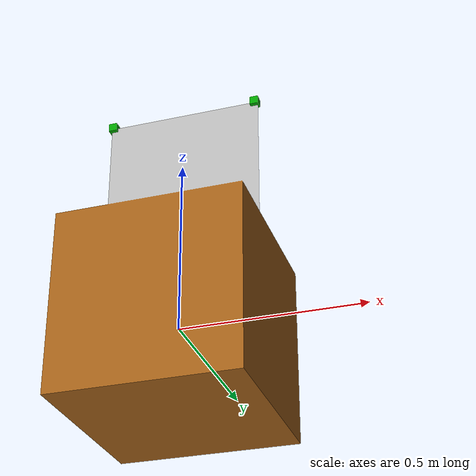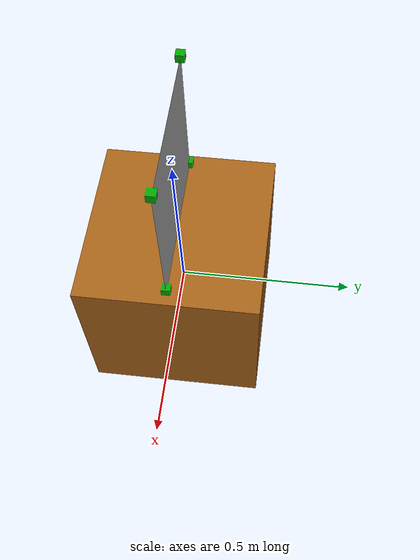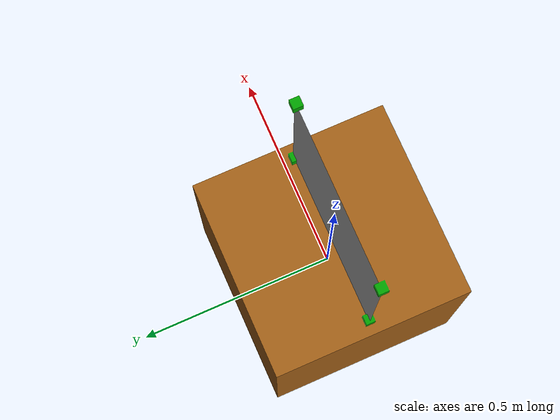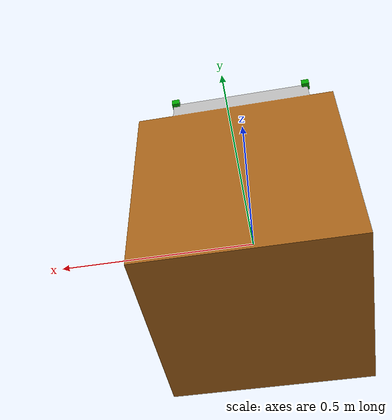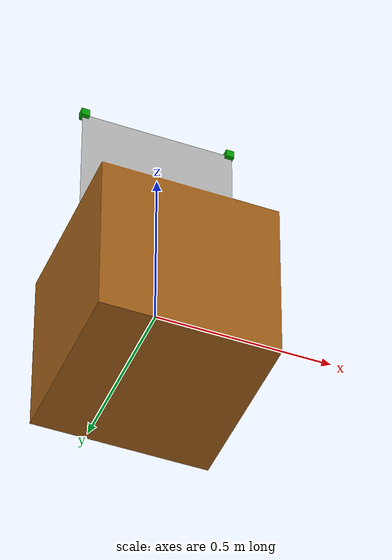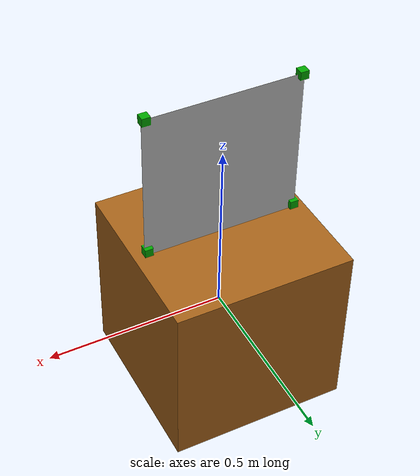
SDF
<?xml version="1.0" ?>
<sdf version='1.4'>
  <model name="box">
      <static>0</static>
      <link name='link'>
        <inertial>
          <mass>0.25</mass>
          <inertia>
            <ixx>0.001</ixx>
            <ixy>0.000000</ixy>
            <ixz>0.000000</ixz>
            <iyy>0.001</iyy>
            <iyz>0.000000</iyz>
            <izz>0.001</izz>
          </inertia>
        </inertial>
        <collision name='collision'>
            <geometry>
                <mesh>
                    <uri>package://pr2_launch/models/mesh/box.dae</uri>
                </mesh>
            </geometry>
        </collision>
        <visual name='visual'>
          <geometry>
              <mesh>
                  <uri>package://pr2_launch/models/mesh/box.dae</uri>
              </mesh>
          </geometry>
          <material>
            <script>
              <uri>package://pr2_launch/models/mesh/box.dae</uri>

            </script>
          </material>
        </visual>
        <velocity_decay>
          <linear>0.000000</linear>
          <angular>0.000000</angular>
        </velocity_decay>
        <self_collide>0</self_collide>
        <kinematic>0</kinematic>
        <gravity>1</gravity>
      </link>
  </model>
</sdf>
